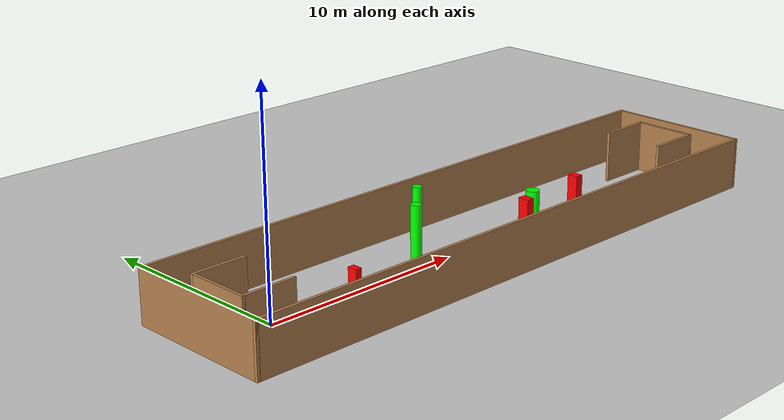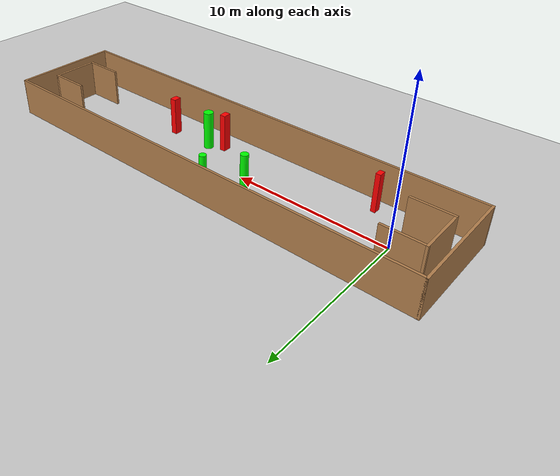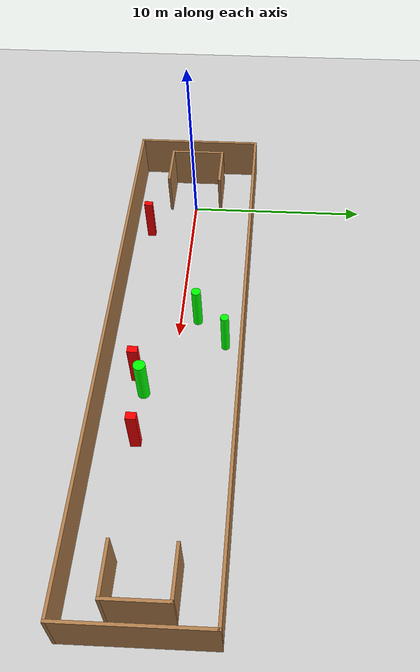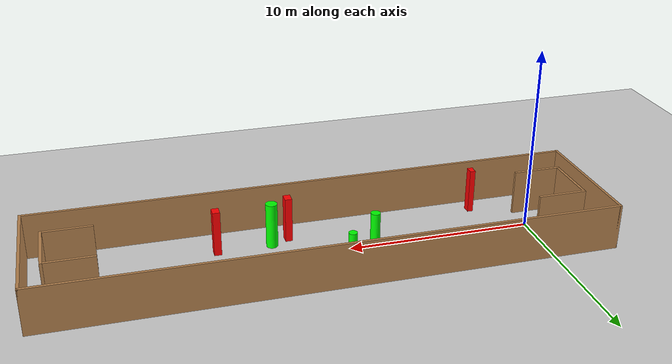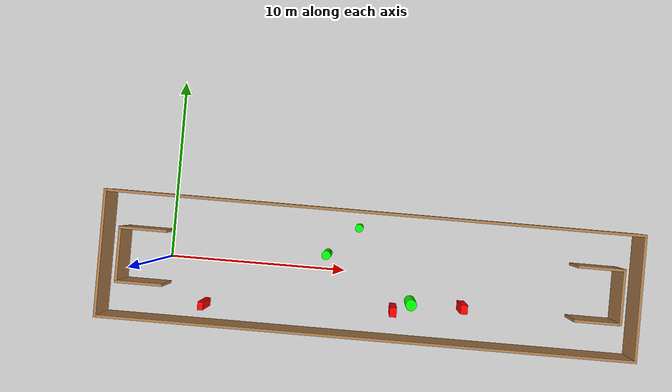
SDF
<sdf version="1.7">
 <world name="default">
  <light name="sun" type="directional">
   <pose>0 0 10 0 -0 0</pose>
   <diffuse>0.8 0.8 0.8 1</diffuse>
   <specular>0.2 0.2 0.2 1</specular>
   <attenuation>
    <range>1000</range>
    <constant>0.9</constant>
    <linear>0.01</linear>
    <quadratic>0.001</quadratic>
   </attenuation>
   <direction>-0.5 0.1 -0.9</direction>
   <spot><inner_angle>0</inner_angle><outer_angle>0</outer_angle><falloff>0</falloff></spot>
  </light>
  <model name="ground_plane">
   <static>1</static>
   <link name="link">
    <collision name="collision">
     <geometry><plane><normal>0 0 1</normal><size>100 100</size></plane></geometry>
     <surface>
      <contact><collide_bitmask>65535</collide_bitmask></contact>
      <friction><ode><mu>100</mu><mu2>50</mu2></ode></friction>
     </surface>
    </collision>
    <visual name="visual">
     <cast_shadows>0</cast_shadows>
     <geometry><plane><normal>0 0 1</normal><size>100 100</size></plane></geometry>
     <material>
      <script><uri>file://media/materials/scripts/gazebo.material</uri><name>Gazebo/Grey</name></script>
     </material>
    </visual>
   </link>
  </model>
  <gravity>0 0 -9.8</gravity>
  <magnetic_field>6e-06 2.3e-05 -4.2e-05</magnetic_field>
  <atmosphere type="adiabatic"/>
  <physics type="ode">
   <max_step_size>0.001</max_step_size>
   <real_time_factor>1</real_time_factor>
   <real_time_update_rate>1000</real_time_update_rate>
  </physics>
  <scene><ambient>0.4 0.4 0.4 1</ambient><background>0.7 0.7 0.7 1</background><shadows>1</shadows></scene>
  <spherical_coordinates>
   <surface_model>EARTH_WGS84</surface_model>
   <latitude_deg>0</latitude_deg>
   <longitude_deg>0</longitude_deg>
   <elevation>0</elevation>
   <heading_deg>0</heading_deg>
  </spherical_coordinates>
  <model name="my_base_walls">
   <link name="Wall_0">
    <collision name="Wall_0_Collision">
     <geometry><box><size>7.15 0.15 2.5</size></box></geometry>
     <pose>0 0 1.25 0 -0 0</pose>
    </collision>
    <visual name="Wall_0_Visual">
     <pose>0 0 1.25 0 -0 0</pose>
     <geometry><box><size>7.15 0.15 2.5</size></box></geometry>
     <material>
      <script><uri>file://media/materials/scripts/gazebo.material</uri><name>Gazebo/Wood</name></script>
      <ambient>1 1 1 1</ambient>
     </material>
     <meta><layer>0</layer></meta>
    </visual>
    <pose>-15 0 0 0 -0 1.5708</pose>
   </link>
   <link name="Wall_10">
    <collision name="Wall_10_Collision">
     <geometry><box><size>2.65 0.15 2.5</size></box></geometry>
     <pose>0 0 1.25 0 -0 0</pose>
    </collision>
    <visual name="Wall_10_Visual">
     <pose>0 0 1.25 0 -0 0</pose>
     <geometry><box><size>2.65 0.15 2.5</size></box></geometry>
     <material>
      <script><uri>file://media/materials/scripts/gazebo.material</uri><name>Gazebo/Wood</name></script>
      <ambient>1 1 1 1</ambient>
     </material>
     <meta><layer>0</layer></meta>
    </visual>
    <pose>-12.75 -1.5 0 0 -0 0</pose>
   </link>
   <link name="Wall_12">
    <collision name="Wall_12_Collision">
     <geometry><box><size>2.65 0.15 2.5</size></box></geometry>
     <pose>0 0 1.25 0 -0 0</pose>
    </collision>
    <visual name="Wall_12_Visual">
     <pose>0 0 1.25 0 -0 0</pose>
     <geometry><box><size>2.65 0.15 2.5</size></box></geometry>
     <material>
      <script><uri>file://media/materials/scripts/gazebo.material</uri><name>Gazebo/Wood</name></script>
      <ambient>1 1 1 1</ambient>
     </material>
     <meta><layer>0</layer></meta>
    </visual>
    <pose>-12.75 1.5 0 0 -0 0</pose>
   </link>
   <link name="Wall_14">
    <collision name="Wall_14_Collision">
     <geometry><box><size>3.15 0.15 2.5</size></box></geometry>
     <pose>0 0 1.25 0 -0 0</pose>
    </collision>
    <visual name="Wall_14_Visual">
     <pose>0 0 1.25 0 -0 0</pose>
     <geometry><box><size>3.15 0.15 2.5</size></box></geometry>
     <material>
      <script><uri>file://media/materials/scripts/gazebo.material</uri><name>Gazebo/Wood</name></script>
      <ambient>1 1 1 1</ambient>
     </material>
     <meta><layer>0</layer></meta>
    </visual>
    <pose>14 0 0 0 -0 -1.5708</pose>
   </link>
   <link name="Wall_15">
    <collision name="Wall_15_Collision">
     <geometry><box><size>2.65 0.15 2.5</size></box></geometry>
     <pose>0 0 1.25 0 -0 0</pose>
    </collision>
    <visual name="Wall_15_Visual">
     <pose>0 0 1.25 0 -0 0</pose>
     <geometry><box><size>2.65 0.15 2.5</size></box></geometry>
     <material>
      <script><uri>file://media/materials/scripts/gazebo.material</uri><name>Gazebo/Wood</name></script>
      <ambient>1 1 1 1</ambient>
     </material>
     <meta><layer>0</layer></meta>
    </visual>
    <pose>12.75 -1.5 0 0 -0 3.14159</pose>
   </link>
   <link name="Wall_17">
    <collision name="Wall_17_Collision">
     <geometry><box><size>2.65 0.15 2.5</size></box></geometry>
     <pose>0 0 1.25 0 -0 0</pose>
    </collision>
    <visual name="Wall_17_Visual">
     <pose>0 0 1.25 0 -0 0</pose>
     <geometry><box><size>2.65 0.15 2.5</size></box></geometry>
     <material>
      <script><uri>file://media/materials/scripts/gazebo.material</uri><name>Gazebo/Wood</name></script>
      <ambient>1 1 1 1</ambient>
     </material>
     <meta><layer>0</layer></meta>
    </visual>
    <pose>12.75 1.5 0 0 -0 3.14159</pose>
   </link>
   <link name="Wall_2">
    <collision name="Wall_2_Collision">
     <geometry><box><size>30.15 0.15 2.5</size></box></geometry>
     <pose>0 0 1.25 0 -0 0</pose>
    </collision>
    <visual name="Wall_2_Visual">
     <pose>0 0 1.25 0 -0 0</pose>
     <geometry><box><size>30.15 0.15 2.5</size></box></geometry>
     <material>
      <script><uri>file://media/materials/scripts/gazebo.material</uri><name>Gazebo/Wood</name></script>
      <ambient>1 1 1 1</ambient>
     </material>
     <meta><layer>0</layer></meta>
    </visual>
    <pose>-0 -3.5 0 0 -0 0</pose>
   </link>
   <link name="Wall_4">
    <collision name="Wall_4_Collision">
     <geometry><box><size>30.15 0.15 2.5</size></box></geometry>
     <pose>0 0 1.25 0 -0 0</pose>
    </collision>
    <visual name="Wall_4_Visual">
     <pose>0 0 1.25 0 -0 0</pose>
     <geometry><box><size>30.15 0.15 2.5</size></box></geometry>
     <material>
      <script><uri>file://media/materials/scripts/gazebo.material</uri><name>Gazebo/Wood</name></script>
      <ambient>1 1 1 1</ambient>
     </material>
     <meta><layer>0</layer></meta>
    </visual>
    <pose>-0 3.5 0 0 -0 0</pose>
   </link>
   <link name="Wall_6">
    <collision name="Wall_6_Collision">
     <geometry><box><size>7.15 0.15 2.5</size></box></geometry>
     <pose>0 0 1.25 0 -0 0</pose>
    </collision>
    <visual name="Wall_6_Visual">
     <pose>0 0 1.25 0 -0 0</pose>
     <geometry><box><size>7.15 0.15 2.5</size></box></geometry>
     <material>
      <script><uri>file://media/materials/scripts/gazebo.material</uri><name>Gazebo/Wood</name></script>
      <ambient>1 1 1 1</ambient>
     </material>
     <meta><layer>0</layer></meta>
    </visual>
    <pose>15 0 0 0 -0 -1.5708</pose>
   </link>
   <link name="Wall_9">
    <collision name="Wall_9_Collision">
     <geometry><box><size>3.15 0.15 2.5</size></box></geometry>
     <pose>0 0 1.25 0 -0 0</pose>
    </collision>
    <visual name="Wall_9_Visual">
     <pose>0 0 1.25 0 -0 0</pose>
     <geometry><box><size>3.15 0.15 2.5</size></box></geometry>
     <material>
      <script><uri>file://media/materials/scripts/gazebo.material</uri><name>Gazebo/Wood</name></script>
      <ambient>1 1 1 1</ambient>
     </material>
     <meta><layer>0</layer></meta>
    </visual>
    <pose>-14 0 0 0 -0 -1.5708</pose>
   </link>
   <static>1</static>
   <pose>11.5 0 0 0 -0 0</pose>
  </model>
  <model name="cylinder1">
   <static>1</static>
   <link name="link">
    <inertial>
     <mass>1</mass>
     <inertia><ixx>0.5</ixx><ixy>0</ixy><ixz>0</ixz><iyy>0.5</iyy><iyz>0</iyz><izz>1</izz></inertia>
    </inertial>
    <collision name="collision">
     <geometry><cylinder><radius>0.25212261647792567</radius><length>2.5</length></cylinder></geometry>
    </collision>
    <visual name="visual">
     <geometry><cylinder><radius>0.25212261647792567</radius><length>2.5</length></cylinder></geometry>
     <material>
      <ambient>0 1 0 1</ambient>
      <diffuse>0 1 0 1</diffuse>
      <specular>0.1 0.1 0.1 1</specular>
      <emissive>0 0 0 0</emissive>
     </material>
    </visual>
   </link>
   <pose>8.97084827540849 0.9318506544097493 1.25 0 0 0</pose>
  </model>
  <model name="cylinder2">
   <static>1</static>
   <link name="link">
    <inertial>
     <mass>1</mass>
     <inertia><ixx>0.5</ixx><ixy>0</ixy><ixz>0</ixz><iyy>0.5</iyy><iyz>0</iyz><izz>1</izz></inertia>
    </inertial>
    <collision name="collision">
     <geometry><cylinder><radius>0.221034169789053</radius><length>2.5</length></cylinder></geometry>
    </collision>
    <visual name="visual">
     <geometry><cylinder><radius>0.221034169789053</radius><length>2.5</length></cylinder></geometry>
     <material>
      <ambient>0 1 0 1</ambient>
      <diffuse>0 1 0 1</diffuse>
      <specular>0.1 0.1 0.1 1</specular>
      <emissive>0 0 0 0</emissive>
     </material>
    </visual>
   </link>
   <pose>10.668986809097857 2.568499101968631 1.25 0 0 0</pose>
  </model>
  <model name="cylinder3">
   <static>1</static>
   <link name="link">
    <inertial>
     <mass>1</mass>
     <inertia><ixx>0.5</ixx><ixy>0</ixy><ixz>0</ixz><iyy>0.5</iyy><iyz>0</iyz><izz>1</izz></inertia>
    </inertial>
    <collision name="collision">
     <geometry><cylinder><radius>0.31207331062819793</radius><length>2.5</length></cylinder></geometry>
    </collision>
    <visual name="visual">
     <geometry><cylinder><radius>0.31207331062819793</radius><length>2.5</length></cylinder></geometry>
     <material>
      <ambient>0 1 0 1</ambient>
      <diffuse>0 1 0 1</diffuse>
      <specular>0.1 0.1 0.1 1</specular>
      <emissive>0 0 0 0</emissive>
     </material>
    </visual>
   </link>
   <pose>13.89917599613974 -1.4220025222327815 1.25 0 0 0</pose>
  </model>
  <model name="box1">
   <static>1</static>
   <link name="link">
    <inertial>
     <mass>1</mass>
     <inertia><ixx>0.083</ixx><ixy>0</ixy><ixz>0</ixz><iyy>0.083</iyy><iyz>0</iyz><izz>0.083</izz></inertia>
    </inertial>
    <collision name="collision">
     <geometry><box><size>0.3805423121158701 0.531236307143978 2.5</size></box></geometry>
    </collision>
    <visual name="visual">
     <geometry><box><size>0.3805423121158701 0.531236307143978 2.5</size></box></geometry>
     <material>
      <ambient>1 0 0 1</ambient>
      <diffuse>1 0 0 1</diffuse>
      <specular>0.1 0.1 0.1 1</specular>
      <emissive>0 0 0 0</emissive>
     </material>
    </visual>
    <sensor name="my_contact" type="contact">
     <contact><collision>box_collision</collision><topic>__default_topic__</topic></contact>
    </sensor>
   </link>
   <pose>12.928320807200178 -1.895512893405885 1.25 0 0 0</pose>
  </model>
  <model name="box2">
   <static>1</static>
   <link name="link">
    <inertial>
     <mass>1</mass>
     <inertia><ixx>0.083</ixx><ixy>0</ixy><ixz>0</ixz><iyy>0.083</iyy><iyz>0</iyz><izz>0.083</izz></inertia>
    </inertial>
    <collision name="collision">
     <geometry><box><size>0.304201104156116 0.4599293413796353 2.5</size></box></geometry>
    </collision>
    <visual name="visual">
     <geometry><box><size>0.304201104156116 0.4599293413796353 2.5</size></box></geometry>
     <material>
      <ambient>1 0 0 1</ambient>
      <diffuse>1 0 0 1</diffuse>
      <specular>0.1 0.1 0.1 1</specular>
      <emissive>0 0 0 0</emissive>
     </material>
    </visual>
    <sensor name="my_contact" type="contact">
     <contact><collision>box_collision</collision><topic>__default_topic__</topic></contact>
    </sensor>
   </link>
   <pose>2.2763882854736686 -2.4550028439418137 1.25 0 0 0</pose>
  </model>
  <model name="box3">
   <static>1</static>
   <link name="link">
    <inertial>
     <mass>1</mass>
     <inertia><ixx>0.083</ixx><ixy>0</ixy><ixz>0</ixz><iyy>0.083</iyy><iyz>0</iyz><izz>0.083</izz></inertia>
    </inertial>
    <collision name="collision">
     <geometry><box><size>0.3930277485924639 0.514624363161314 2.5</size></box></geometry>
    </collision>
    <visual name="visual">
     <geometry><box><size>0.3930277485924639 0.514624363161314 2.5</size></box></geometry>
     <material>
      <ambient>1 0 0 1</ambient>
      <diffuse>1 0 0 1</diffuse>
      <specular>0.1 0.1 0.1 1</specular>
      <emissive>0 0 0 0</emissive>
     </material>
    </visual>
    <sensor name="my_contact" type="contact">
     <contact><collision>box_collision</collision><topic>__default_topic__</topic></contact>
    </sensor>
   </link>
   <pose>16.829087646687924 -1.415994458391058 1.25 0 0 0</pose>
  </model>
 </world>
</sdf>
